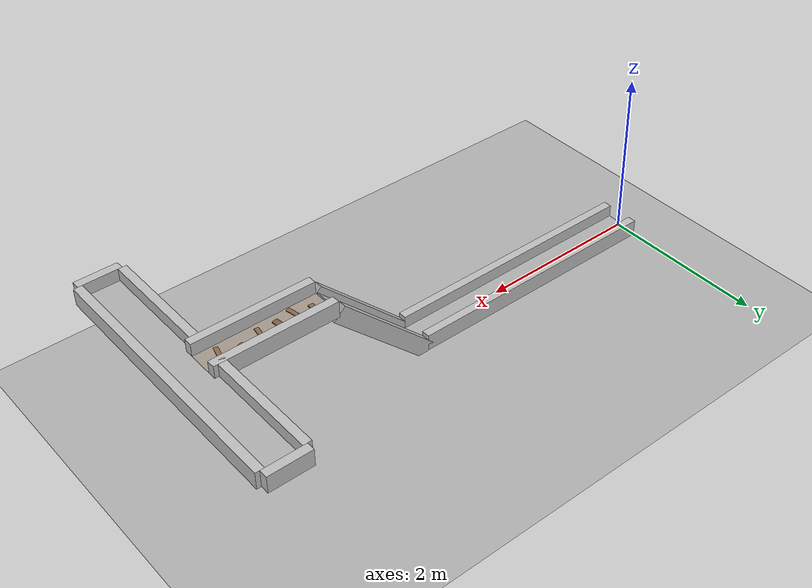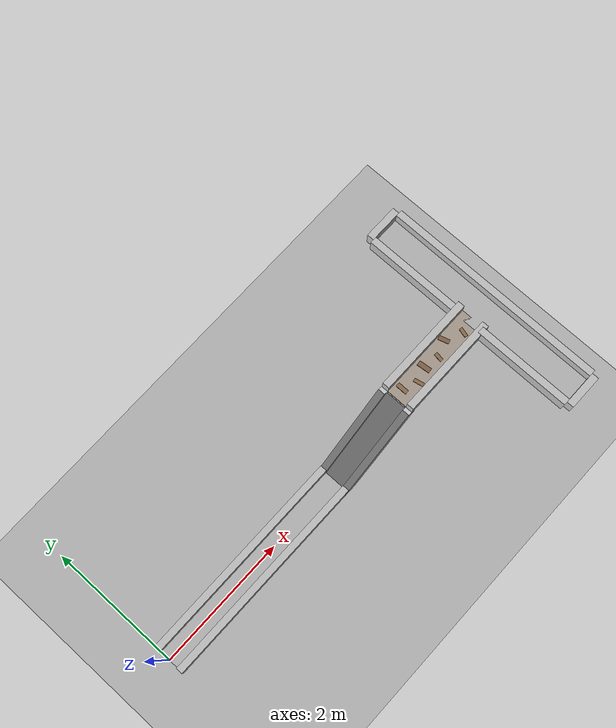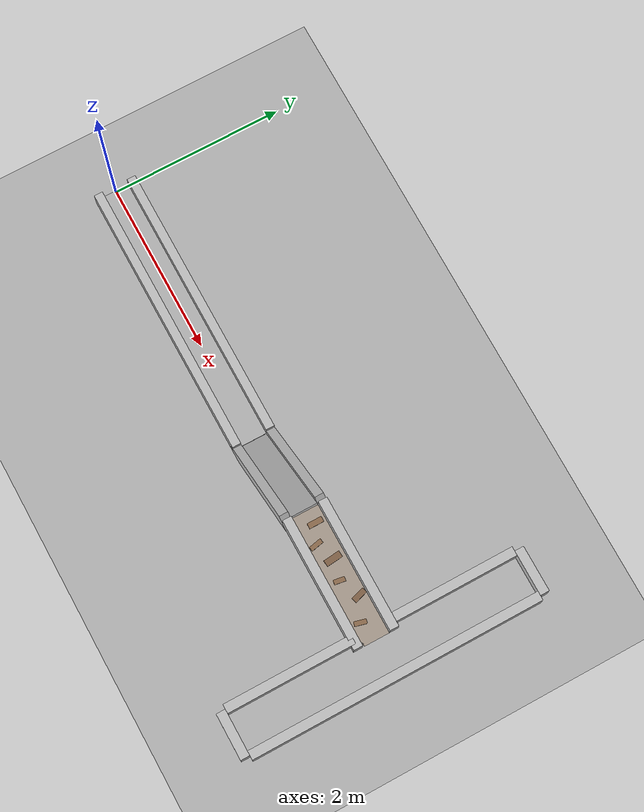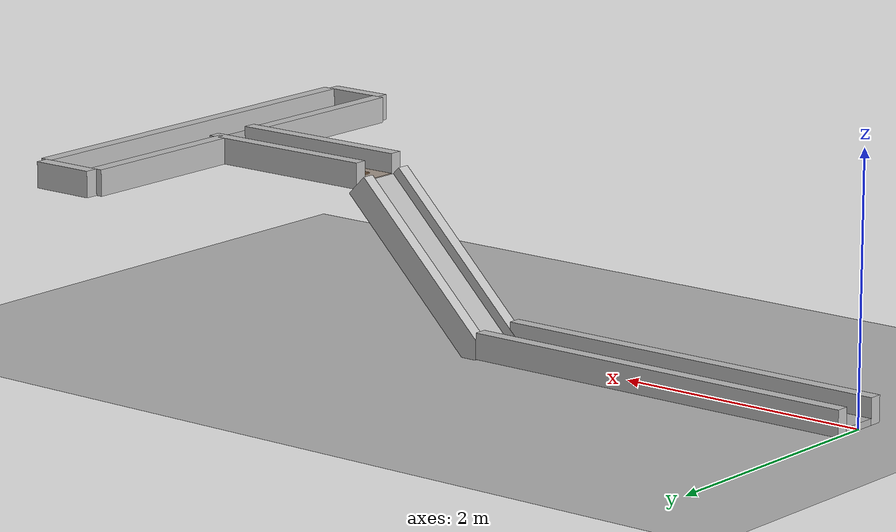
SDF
<?xml version="1.0" encoding="utf-8"?>
<sdf version="1.6">
  <world name="course_test">

    <!-- directional light -->
    <light type="directional" name="sun">
      <pose>0 0 10 0 0 0</pose>
      <diffuse>0.8 0.8 0.8 1</diffuse>
      <specular>0.2 0.2 0.2 1</specular>
      <direction>-0.5 0.1 -0.9</direction>
      <cast_shadows>true</cast_shadows>
    </light>

    <!-- ground plane -->
    <model name="ground_plane">
      <static>true</static>
      <link name="link">
        <collision name="collision">
          <geometry><plane><normal>0 0 1</normal><size>100 100</size></plane></geometry>
        </collision>
        <visual name="visual">
          <geometry><plane><normal>0 0 1</normal><size>100 100</size></plane></geometry>
          <material>
            <ambient>0.5 0.5 0.5 1</ambient>
            <diffuse>0.7 0.7 0.7 1</diffuse>
          </material>
        </visual>
      </link>
    </model>

    <!-- COURSE: 3200mm flat -> 1600mm 45deg uphill -> 1600mm disturbance -> T-junction -->
    <!-- Path width: 0.3m   Wall height: 0.2m   Wall thickness: 0.1m   Floor thickness: 0.05m -->

    <model name="test_course">
      <static>true</static>

      <!-- ===== SEGMENT 1: flat straight, X = 0 -> 3.2, Z = 0 ===== -->
      <link name="seg1_floor">
        <pose>1.6 0 0.025 0 0 0</pose>
        <collision name="collision">
          <geometry><box><size>3.2 0.3 0.05</size></box></geometry>
          <surface>
            <friction><ode><mu>1.0</mu><mu2>1.0</mu2></ode></friction>
          </surface>
        </collision>
        <visual name="visual">
          <geometry><box><size>3.2 0.3 0.05</size></box></geometry>
          <material><ambient>0.7 0.7 0.7 1</ambient><diffuse>0.7 0.7 0.7 1</diffuse></material>
        </visual>
      </link>

      <link name="seg1_wall_left">
        <pose>1.6 -0.2 0.1 0 0 0</pose>
        <collision name="collision">
          <geometry><box><size>3.2 0.1 0.2</size></box></geometry>
        </collision>
        <visual name="visual">
          <geometry><box><size>3.2 0.1 0.2</size></box></geometry>
          <material><ambient>0.75 0.75 0.75 1</ambient><diffuse>0.75 0.75 0.75 1</diffuse></material>
        </visual>
      </link>

      <link name="seg1_wall_right">
        <pose>1.6 0.2 0.1 0 0 0</pose>
        <collision name="collision">
          <geometry><box><size>3.2 0.1 0.2</size></box></geometry>
        </collision>
        <visual name="visual">
          <geometry><box><size>3.2 0.1 0.2</size></box></geometry>
          <material><ambient>0.75 0.75 0.75 1</ambient><diffuse>0.75 0.75 0.75 1</diffuse></material>
        </visual>
      </link>

      <!-- ===== SEGMENT 2: 45deg uphill ramp, length 1.6m along slope ===== -->
      <!-- delta_X = delta_Z = 1.6 * cos45 = 1.1314 -->
      <!-- start (3.2,0,0), end (4.3314,0,1.1314), centre (3.7657,0,0.5657) -->
      <link name="seg2_floor">
        <pose>3.7657 0 0.5657 0 -0.7854 0</pose>
        <collision name="collision">
          <geometry><box><size>1.6 0.3 0.05</size></box></geometry>
          <surface>
            <friction><ode><mu>1.0</mu><mu2>1.0</mu2></ode></friction>
          </surface>
        </collision>
        <visual name="visual">
          <geometry><box><size>1.6 0.3 0.05</size></box></geometry>
          <material><ambient>0.7 0.7 0.7 1</ambient><diffuse>0.7 0.7 0.7 1</diffuse></material>
        </visual>
      </link>

      <link name="seg2_wall_left">
        <pose>3.7657 -0.2 0.5657 0 -0.7854 0</pose>
        <collision name="collision">
          <geometry><box><size>1.6 0.1 0.2</size></box></geometry>
        </collision>
        <visual name="visual">
          <geometry><box><size>1.6 0.1 0.2</size></box></geometry>
          <material><ambient>0.75 0.75 0.75 1</ambient><diffuse>0.75 0.75 0.75 1</diffuse></material>
        </visual>
      </link>

      <link name="seg2_wall_right">
        <pose>3.7657 0.2 0.5657 0 -0.7854 0</pose>
        <collision name="collision">
          <geometry><box><size>1.6 0.1 0.2</size></box></geometry>
        </collision>
        <visual name="visual">
          <geometry><box><size>1.6 0.1 0.2</size></box></geometry>
          <material><ambient>0.75 0.75 0.75 1</ambient><diffuse>0.75 0.75 0.75 1</diffuse></material>
        </visual>
      </link>

      <!-- ===== SEGMENT 3: disturbance (ground bumps), X = 4.3314 -> 5.7814, Z = 1.1314 ===== -->
      <link name="seg3_floor">
        <pose>5.0564 0 1.1241 0 0 0</pose>
        <collision name="collision">
          <geometry><box><size>1.45 0.3 0.05</size></box></geometry>
          <surface>
            <friction><ode><mu>1.0</mu><mu2>1.0</mu2></ode></friction>
          </surface>
        </collision>
        <visual name="visual">
          <geometry><box><size>1.45 0.3 0.05</size></box></geometry>
          <material><ambient>0.65 0.60 0.55 1</ambient><diffuse>0.65 0.60 0.55 1</diffuse></material>
        </visual>
      </link>

      <link name="seg3_wall_left">
        <pose>5.0564 -0.2 1.1991 0 0 0</pose>
        <collision name="collision">
          <geometry><box><size>1.45 0.1 0.2</size></box></geometry>
        </collision>
        <visual name="visual">
          <geometry><box><size>1.45 0.1 0.2</size></box></geometry>
          <material><ambient>0.75 0.75 0.75 1</ambient><diffuse>0.75 0.75 0.75 1</diffuse></material>
        </visual>
      </link>

      <link name="seg3_wall_right">
        <pose>5.0564 0.2 1.1991 0 0 0</pose>
        <collision name="collision">
          <geometry><box><size>1.45 0.1 0.2</size></box></geometry>
        </collision>
        <visual name="visual">
          <geometry><box><size>1.45 0.1 0.2</size></box></geometry>
          <material><ambient>0.75 0.75 0.75 1</ambient><diffuse>0.75 0.75 0.75 1</diffuse></material>
        </visual>
      </link>

      <!-- disturbance bumps on seg3 floor surface (Z_top = 1.1314) -->
      <link name="seg3_bump_01">
        <pose>4.48 0.04 1.1541 0 0 0.0</pose>
        <collision name="collision">
          <geometry><box><size>0.06 0.16 0.010</size></box></geometry>
          <surface><friction><ode><mu>1.0</mu><mu2>1.0</mu2></ode></friction></surface>
        </collision>
        <visual name="visual">
          <geometry><box><size>0.06 0.16 0.010</size></box></geometry>
          <material><ambient>0.55 0.42 0.30 1</ambient><diffuse>0.55 0.42 0.30 1</diffuse></material>
        </visual>
      </link>

      <link name="seg3_bump_02">
        <pose>4.68 -0.06 1.1531 0 0 0.2</pose>
        <collision name="collision">
          <geometry><box><size>0.05 0.14 0.008</size></box></geometry>
          <surface><friction><ode><mu>1.0</mu><mu2>1.0</mu2></ode></friction></surface>
        </collision>
        <visual name="visual">
          <geometry><box><size>0.05 0.14 0.008</size></box></geometry>
          <material><ambient>0.55 0.42 0.30 1</ambient><diffuse>0.55 0.42 0.30 1</diffuse></material>
        </visual>
      </link>

      <link name="seg3_bump_03">
        <pose>4.88 0.02 1.1541 0 0 0.1</pose>
        <collision name="collision">
          <geometry><box><size>0.07 0.18 0.010</size></box></geometry>
          <surface><friction><ode><mu>1.0</mu><mu2>1.0</mu2></ode></friction></surface>
        </collision>
        <visual name="visual">
          <geometry><box><size>0.07 0.18 0.010</size></box></geometry>
          <material><ambient>0.50 0.38 0.28 1</ambient><diffuse>0.50 0.38 0.28 1</diffuse></material>
        </visual>
      </link>

      <link name="seg3_bump_04">
        <pose>5.10 -0.03 1.1536 0 0 -0.15</pose>
        <collision name="collision">
          <geometry><box><size>0.05 0.12 0.009</size></box></geometry>
          <surface><friction><ode><mu>1.0</mu><mu2>1.0</mu2></ode></friction></surface>
        </collision>
        <visual name="visual">
          <geometry><box><size>0.05 0.12 0.009</size></box></geometry>
          <material><ambient>0.55 0.42 0.30 1</ambient><diffuse>0.55 0.42 0.30 1</diffuse></material>
        </visual>
      </link>

      <link name="seg3_bump_05">
        <pose>5.32 0.07 1.1541 0 0 0.3</pose>
        <collision name="collision">
          <geometry><box><size>0.06 0.15 0.010</size></box></geometry>
          <surface><friction><ode><mu>1.0</mu><mu2>1.0</mu2></ode></friction></surface>
        </collision>
        <visual name="visual">
          <geometry><box><size>0.06 0.15 0.010</size></box></geometry>
          <material><ambient>0.50 0.38 0.28 1</ambient><diffuse>0.50 0.38 0.28 1</diffuse></material>
        </visual>
      </link>

      <link name="seg3_bump_06">
        <pose>5.56 -0.05 1.1526 0 0 -0.25</pose>
        <collision name="collision">
          <geometry><box><size>0.05 0.13 0.007</size></box></geometry>
          <surface><friction><ode><mu>1.0</mu><mu2>1.0</mu2></ode></friction></surface>
        </collision>
        <visual name="visual">
          <geometry><box><size>0.05 0.13 0.007</size></box></geometry>
          <material><ambient>0.55 0.42 0.30 1</ambient><diffuse>0.55 0.42 0.30 1</diffuse></material>
        </visual>
      </link>

      <!-- ===== SEGMENT 4: T-junction, approach joins at X = 5.9314, cross path spans Y = -1.6 -> 1.6 ===== -->

      <!-- junction floor: 0.5m wide in X, 3.2m long in Y, at Z = 1.1314 -->
      <link name="junction_floor">
        <pose>5.9314 0 1.1241 0 0 0</pose>
        <collision name="collision">
          <geometry><box><size>0.5 3.2 0.05</size></box></geometry>
          <surface>
            <friction><ode><mu>1.0</mu><mu2>1.0</mu2></ode></friction>
          </surface>
        </collision>
        <visual name="visual">
          <geometry><box><size>0.5 3.2 0.05</size></box></geometry>
          <material><ambient>0.7 0.7 0.7 1</ambient><diffuse>0.7 0.7 0.7 1</diffuse></material>
        </visual>
      </link>

      <!-- junction left wall, north half (gap at Y ~ 0 for approach arm) -->
      <!-- left wall X = 5.9314 - 0.25 - 0.05 = 5.6814 -->
      <link name="junction_wall_left_north">
        <pose>5.6814 0.9 1.1991 0 0 0</pose>
        <collision name="collision">
          <geometry><box><size>0.1 1.4 0.2</size></box></geometry>
        </collision>
        <visual name="visual">
          <geometry><box><size>0.1 1.4 0.2</size></box></geometry>
          <material><ambient>0.75 0.75 0.75 1</ambient><diffuse>0.75 0.75 0.75 1</diffuse></material>
        </visual>
      </link>

      <!-- junction left wall, south half -->
      <link name="junction_wall_left_south">
        <pose>5.6814 -0.9 1.1991 0 0 0</pose>
        <collision name="collision">
          <geometry><box><size>0.1 1.4 0.2</size></box></geometry>
        </collision>
        <visual name="visual">
          <geometry><box><size>0.1 1.4 0.2</size></box></geometry>
          <material><ambient>0.75 0.75 0.75 1</ambient><diffuse>0.75 0.75 0.75 1</diffuse></material>
        </visual>
      </link>

      <!-- junction right wall (full length), X = 5.9314 + 0.25 + 0.05 = 6.1814 -->
      <link name="junction_wall_right">
        <pose>6.1814 0 1.1991 0 0 0</pose>
        <collision name="collision">
          <geometry><box><size>0.1 3.2 0.2</size></box></geometry>
        </collision>
        <visual name="visual">
          <geometry><box><size>0.1 3.2 0.2</size></box></geometry>
          <material><ambient>0.75 0.75 0.75 1</ambient><diffuse>0.75 0.75 0.75 1</diffuse></material>
        </visual>
      </link>

      <!-- junction end cap walls at Y = +/-1.6 -->
      <link name="junction_wall_end_pos_y">
        <pose>5.9314 1.65 1.1991 0 0 0</pose>
        <collision name="collision">
          <geometry><box><size>0.5 0.1 0.2</size></box></geometry>
        </collision>
        <visual name="visual">
          <geometry><box><size>0.5 0.1 0.2</size></box></geometry>
          <material><ambient>0.75 0.75 0.75 1</ambient><diffuse>0.75 0.75 0.75 1</diffuse></material>
        </visual>
      </link>

      <link name="junction_wall_end_neg_y">
        <pose>5.9314 -1.65 1.1991 0 0 0</pose>
        <collision name="collision">
          <geometry><box><size>0.5 0.1 0.2</size></box></geometry>
        </collision>
        <visual name="visual">
          <geometry><box><size>0.5 0.1 0.2</size></box></geometry>
          <material><ambient>0.75 0.75 0.75 1</ambient><diffuse>0.75 0.75 0.75 1</diffuse></material>
        </visual>
      </link>

    </model>

  </world>
</sdf>
